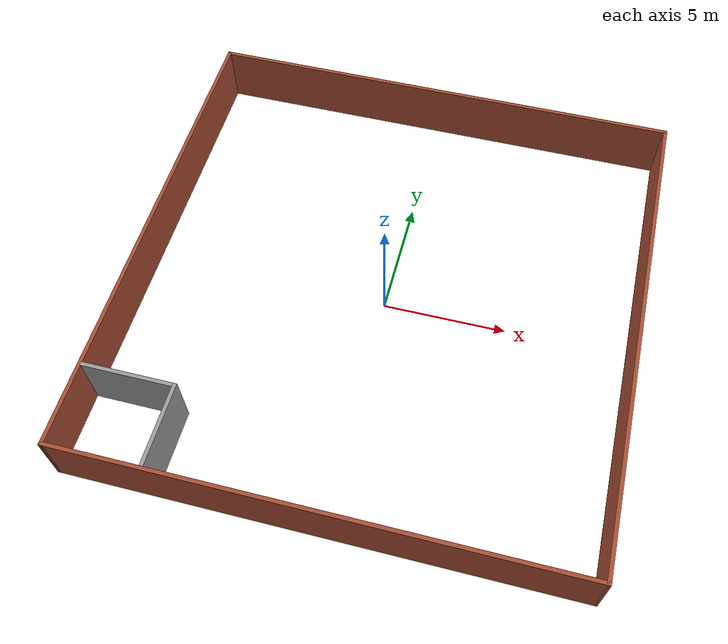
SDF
<?xml version='1.0'?>
<sdf version='1.6'>
  <model name='UdacityOffice3'>
    <pose>0.033815 0.049096 0 0 -0 0</pose>
    <link name='Wall_0'>
      <collision name='Wall_0_Collision'>
        <geometry>
          <box>
            <size>20 0.15 2.5</size>
          </box>
        </geometry>
        <pose>0 0 1.25 0 -0 0</pose>
      </collision>
      <visual name='Wall_0_Visual'>
        <pose>0 0 1.25 0 -0 0</pose>
        <geometry>
          <box>
            <size>20 0.15 2.5</size>
          </box>
        </geometry>
        <material>
          <script>
            <uri>file://media/materials/scripts/gazebo.material</uri>
            <name>Gazebo/Bricks</name>
          </script>
          <ambient>1 1 1 1</ambient>
        </material>
        <meta>
          <layer>0</layer>
        </meta>
      </visual>
      <pose>-0.008815 -9.96161 0 0 -0 0</pose>
    </link>
    <link name='Wall_1'>
      <collision name='Wall_1_Collision'>
        <geometry>
          <box>
            <size>20.0268 0.15 2.5</size>
          </box>
        </geometry>
        <pose>0 0 1.25 0 -0 0</pose>
      </collision>
      <visual name='Wall_1_Visual'>
        <pose>0 0 1.25 0 -0 0</pose>
        <geometry>
          <box>
            <size>20.0268 0.15 2.5</size>
          </box>
        </geometry>
        <material>
          <script>
            <uri>file://media/materials/scripts/gazebo.material</uri>
            <name>Gazebo/Bricks</name>
          </script>
          <ambient>1 1 1 1</ambient>
        </material>
        <meta>
          <layer>0</layer>
        </meta>
      </visual>
      <pose>9.925 -0.023228 0 0 -0 1.56991</pose>
    </link>
    <link name='Wall_2'>
      <collision name='Wall_2_Collision'>
        <geometry>
          <box>
            <size>20 0.15 2.5</size>
          </box>
        </geometry>
        <pose>0 0 1.25 0 -0 0</pose>
      </collision>
      <visual name='Wall_2_Visual'>
        <pose>0 0 1.25 0 -0 0</pose>
        <geometry>
          <box>
            <size>20 0.15 2.5</size>
          </box>
        </geometry>
        <material>
          <script>
            <uri>file://media/materials/scripts/gazebo.material</uri>
            <name>Gazebo/Bricks</name>
          </script>
          <ambient>1 1 1 1</ambient>
        </material>
        <meta>
          <layer>0</layer>
        </meta>
      </visual>
      <pose>0.008815 9.96167 0 0 -0 3.14159</pose>
    </link>
    <link name='Wall_3'>
      <collision name='Wall_3_Collision'>
        <geometry>
          <box>
            <size>20.0268 0.15 2.5</size>
          </box>
        </geometry>
        <pose>0 0 1.25 0 -0 0</pose>
      </collision>
      <visual name='Wall_3_Visual'>
        <pose>0 0 1.25 0 -0 0</pose>
        <geometry>
          <box>
            <size>20.0268 0.15 2.5</size>
          </box>
        </geometry>
        <material>
          <script>
            <uri>file://media/materials/scripts/gazebo.material</uri>
            <name>Gazebo/Bricks</name>
          </script>
          <ambient>1 1 1 1</ambient>
        </material>
        <meta>
          <layer>0</layer>
        </meta>
      </visual>
      <pose>-9.925 -0.023228 0 0 -0 -1.57168</pose>
    </link>
    <link name='Wall_5'>
      <collision name='Wall_5_Collision'>
        <geometry>
          <box>
            <size>3.75 0.15 2.5</size>
          </box>
        </geometry>
        <pose>0 0 1.25 0 -0 0</pose>
      </collision>
      <visual name='Wall_5_Visual'>
        <pose>0 0 1.25 0 -0 0</pose>
        <geometry>
          <box>
            <size>3.75 0.15 2.5</size>
          </box>
        </geometry>
        <material>
          <script>
            <uri>file://media/materials/scripts/gazebo.material</uri>
            <name>Gazebo/Grey</name>
          </script>
          <ambient>1 1 1 1</ambient>
        </material>
        <meta>
          <layer>0</layer>
        </meta>
      </visual>
      <pose>-8.02397 -6.68911 0 0 -0 0</pose>
    </link>
    <link name='Wall_6'>
      <collision name='Wall_6_Collision'>
        <geometry>
          <box>
            <size>3.3 0.15 2.5</size>
          </box>
        </geometry>
        <pose>0 0 1.25 0 -0 0</pose>
      </collision>
      <visual name='Wall_6_Visual'>
        <pose>0 0 1.25 0 -0 0</pose>
        <geometry>
          <box>
            <size>3.3 0.15 2.5</size>
          </box>
        </geometry>
        <material>
          <script>
            <uri>file://media/materials/scripts/gazebo.material</uri>
            <name>Gazebo/Grey</name>
          </script>
          <ambient>1 1 1 1</ambient>
        </material>
        <meta>
          <layer>0</layer>
        </meta>
      </visual>
      <pose>-6.22396 -8.26411 0 0 -0 -1.5708</pose>
    </link>
    <static>1</static>
  </model>
</sdf>
